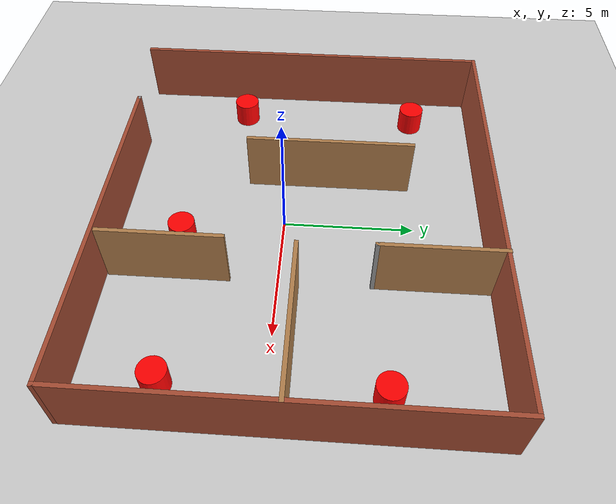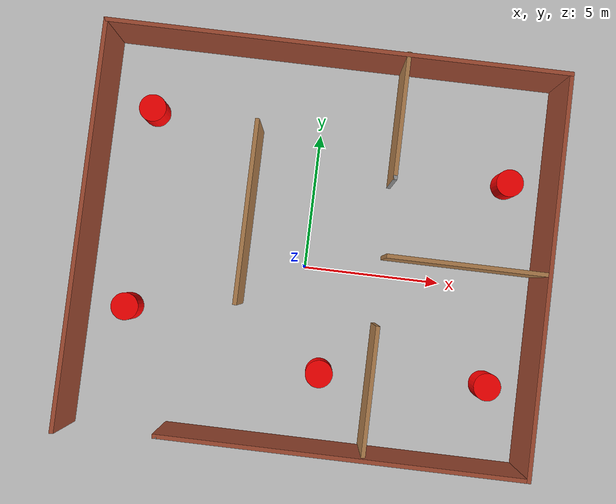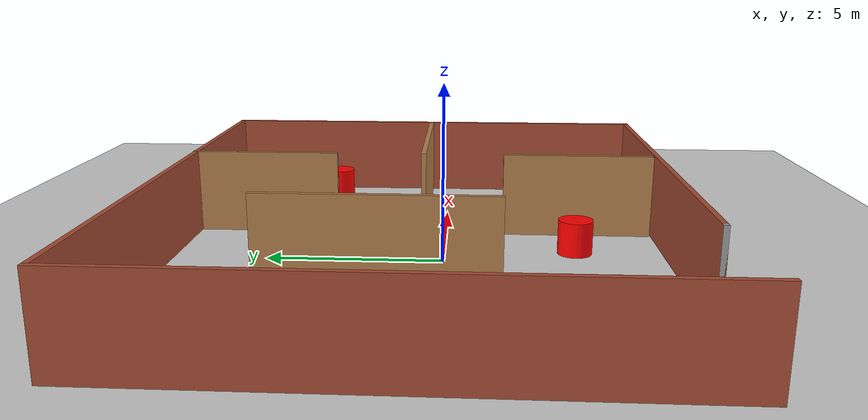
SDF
<sdf version="1.6">
 <world name="default">
  <light name="sun" type="directional">
   <pose>0 0 10 0 -0 0</pose>
   <diffuse>0.8 0.8 0.8 1</diffuse>
   <specular>0.1 0.1 0.1 1</specular>
   <attenuation>
    <range>1000</range>
    <constant>0.9</constant>
    <linear>0.01</linear>
    <quadratic>0.001</quadratic>
   </attenuation>
   <direction>-0.5 0.5 -1</direction>
  </light>
  <model name="ground_plane">
   <static>1</static>
   <link name="link">
    <collision name="collision">
     <geometry><plane><normal>0 0 1</normal><size>100 100</size></plane></geometry>
     <surface><friction><ode><mu>100</mu><mu2>50</mu2></ode></friction></surface>
    </collision>
    <visual name="visual">
     <cast_shadows>0</cast_shadows>
     <geometry><plane><normal>0 0 1</normal><size>100 100</size></plane></geometry>
     <material>
      <script><uri>file://media/materials/scripts/gazebo.material</uri><name>Gazebo/Grey</name></script>
     </material>
    </visual>
   </link>
  </model>
  <gravity>0 0 -9.8</gravity>
  <magnetic_field>6e-06 2.3e-05 -4.2e-05</magnetic_field>
  <atmosphere type="adiabatic"/>
  <physics name="default_physics" default="0" type="ode">
   <max_step_size>0.001</max_step_size>
   <real_time_factor>1</real_time_factor>
   <real_time_update_rate>1000</real_time_update_rate>
  </physics>
  <scene><ambient>0.4 0.4 0.4 1</ambient><background>0.7 0.7 0.7 1</background><shadows>1</shadows></scene>
  <spherical_coordinates>
   <surface_model>EARTH_WGS84</surface_model>
   <latitude_deg>0</latitude_deg>
   <longitude_deg>0</longitude_deg>
   <elevation>0</elevation>
   <heading_deg>0</heading_deg>
  </spherical_coordinates>
  <model name="Untitled">
   <pose>0.287205 0.576961 0 0 -0 0</pose>
   <link name="Wall_10">
    <collision name="Wall_10_Collision">
     <geometry><box><size>14.5 0.15 2.5</size></box></geometry>
     <pose>0 0 1.25 0 -0 0</pose>
    </collision>
    <visual name="Wall_10_Visual">
     <pose>0 0 1.25 0 -0 0</pose>
     <geometry><box><size>14.5 0.15 2.5</size></box></geometry>
     <material>
      <script><uri>file://media/materials/scripts/gazebo.material</uri><name>Gazebo/Bricks</name></script>
      <ambient>1 1 1 1</ambient>
     </material>
     <meta><layer>0</layer></meta>
    </visual>
    <pose>-8.175 -0.012944 0 0 -0 1.5708</pose>
   </link>
   <link name="Wall_11">
    <collision name="Wall_11_Collision">
     <geometry><box><size>16.5 0.15 2.5</size></box></geometry>
     <pose>0 0 1.25 0 -0 0</pose>
    </collision>
    <visual name="Wall_11_Visual">
     <pose>0 0 1.25 0 -0 0</pose>
     <geometry><box><size>16.5 0.15 2.5</size></box></geometry>
     <material>
      <script><uri>file://media/materials/scripts/gazebo.material</uri><name>Gazebo/Bricks</name></script>
      <ambient>1 1 1 1</ambient>
     </material>
     <meta><layer>0</layer></meta>
    </visual>
    <pose>0 7.16206 0 0 -0 0</pose>
   </link>
   <link name="Wall_12">
    <collision name="Wall_12_Collision">
     <geometry><box><size>14.25 0.15 2.5</size></box></geometry>
     <pose>0 0 1.25 0 -0 0</pose>
    </collision>
    <visual name="Wall_12_Visual">
     <pose>0 0 1.25 0 -0 0</pose>
     <geometry><box><size>14.25 0.15 2.5</size></box></geometry>
     <material>
      <script><uri>file://media/materials/scripts/gazebo.material</uri><name>Gazebo/Bricks</name></script>
      <ambient>1 1 1 1</ambient>
     </material>
     <meta><layer>0</layer></meta>
    </visual>
    <pose>8.175 0.112056 0 0 0 -1.5708</pose>
   </link>
   <link name="Wall_13">
    <collision name="Wall_13_Collision">
     <geometry><box><size>13 0.15 2.5</size></box></geometry>
     <pose>0 0 1.25 0 -0 0</pose>
    </collision>
    <visual name="Wall_13_Visual">
     <pose>0 0 1.25 0 -0 0</pose>
     <geometry><box><size>13 0.15 2.5</size></box></geometry>
     <material>
      <script><uri>file://media/materials/scripts/gazebo.material</uri><name>Gazebo/Bricks</name></script>
      <ambient>1 1 1 1</ambient>
     </material>
     <meta><layer>0</layer></meta>
    </visual>
    <pose>1.75 -6.93794 0 0 -0 3.14159</pose>
   </link>
   <link name="Wall_14">
    <collision name="Wall_14_Collision">
     <geometry><box><size>0.16 0.15 2.5</size></box></geometry>
     <pose>0 0 1.25 0 -0 0</pose>
    </collision>
    <visual name="Wall_14_Visual">
     <pose>0 0 1.25 0 -0 0</pose>
     <geometry><box><size>0.16 0.15 2.5</size></box></geometry>
     <material>
      <script><uri>file://media/materials/scripts/gazebo.material</uri><name>Gazebo/Grey</name></script>
      <ambient>1 1 1 1</ambient>
     </material>
     <meta><layer>0</layer></meta>
    </visual>
    <pose>-4.67 -6.93794 0 0 -0 0</pose>
   </link>
   <link name="Wall_16">
    <collision name="Wall_16_Collision">
     <geometry><box><size>4.5 0.15 2.5</size></box></geometry>
     <pose>0 0 1.25 0 -0 0</pose>
    </collision>
    <visual name="Wall_16_Visual">
     <pose>0 0 1.25 0 -0 0</pose>
     <geometry><box><size>4.5 0.15 2.5</size></box></geometry>
     <material>
      <script><uri>file://media/materials/scripts/gazebo.material</uri><name>Gazebo/Wood</name></script>
      <ambient>1 1 1 1</ambient>
     </material>
     <meta><layer>0</layer></meta>
    </visual>
    <pose>2.47898 5.01295 0 0 0 -1.5708</pose>
   </link>
   <link name="Wall_17">
    <collision name="Wall_17_Collision">
     <geometry><box><size>0.15 0.15 2.5</size></box></geometry>
     <pose>0 0 1.25 0 -0 0</pose>
    </collision>
    <visual name="Wall_17_Visual">
     <pose>0 0 1.25 0 -0 0</pose>
     <geometry><box><size>0.15 0.15 2.5</size></box></geometry>
     <material>
      <script><uri>file://media/materials/scripts/gazebo.material</uri><name>Gazebo/Grey</name></script>
      <ambient>1 1 1 1</ambient>
     </material>
     <meta><layer>0</layer></meta>
    </visual>
    <pose>2.47898 2.83794 0 0 -0 0</pose>
   </link>
   <link name="Wall_19">
    <collision name="Wall_19_Collision">
     <geometry><box><size>4.5 0.15 2.5</size></box></geometry>
     <pose>0 0 1.25 0 -0 0</pose>
    </collision>
    <visual name="Wall_19_Visual">
     <pose>0 0 1.25 0 -0 0</pose>
     <geometry><box><size>4.5 0.15 2.5</size></box></geometry>
     <material>
      <script><uri>file://media/materials/scripts/gazebo.material</uri><name>Gazebo/Wood</name></script>
      <ambient>1 1 1 1</ambient>
     </material>
     <meta><layer>0</layer></meta>
    </visual>
    <pose>2.47898 -4.57098 0 0 0 -1.5708</pose>
   </link>
   <link name="Wall_21">
    <collision name="Wall_21_Collision">
     <geometry><box><size>5.75 0.15 2.5</size></box></geometry>
     <pose>0 0 1.25 0 -0 0</pose>
    </collision>
    <visual name="Wall_21_Visual">
     <pose>0 0 1.25 0 -0 0</pose>
     <geometry><box><size>5.75 0.15 2.5</size></box></geometry>
     <material>
      <script><uri>file://media/materials/scripts/gazebo.material</uri><name>Gazebo/Wood</name></script>
      <ambient>1 1 1 1</ambient>
     </material>
     <meta><layer>0</layer></meta>
    </visual>
    <pose>5.37202 0.11631 0 0 -0 0</pose>
   </link>
   <link name="Wall_23">
    <collision name="Wall_23_Collision">
     <geometry><box><size>6.5 0.15 2.5</size></box></geometry>
     <pose>0 0 1.25 0 -0 0</pose>
    </collision>
    <visual name="Wall_23_Visual">
     <pose>0 0 1.25 0 -0 0</pose>
     <geometry><box><size>6.5 0.15 2.5</size></box></geometry>
     <material>
      <script><uri>file://media/materials/scripts/gazebo.material</uri><name>Gazebo/Wood</name></script>
      <ambient>1 1 1 1</ambient>
     </material>
     <meta><layer>0</layer></meta>
    </visual>
    <pose>-2.50229 1.07068 0 0 -0 1.5708</pose>
   </link>
   <static>1</static>
  </model>
  <model name="unit_cylinder">
   <link name="link">
    <inertial>
     <mass>100</mass>
     <inertia><ixx>0.145833</ixx><ixy>0</ixy><ixz>0</ixz><iyy>0.145833</iyy><iyz>0</iyz><izz>0.125</izz></inertia>
    </inertial>
    <visual name="visual">
     <geometry><cylinder><radius>0.5</radius><length>1</length></cylinder></geometry>
     <material>
      <script><name>Gazebo/Grey</name><uri>file://media/materials/scripts/gazebo.material</uri></script>
      <shader type="pixel"><normal_map>__default__</normal_map></shader>
      <ambient>1 0 0 1</ambient>
      <diffuse>1 0 0 1</diffuse>
      <specular>1 0 0 1</specular>
      <emissive>1 0 0 1</emissive>
     </material>
    </visual>
    <collision name="collision">
     <geometry><cylinder><radius>0.5</radius><length>1</length></cylinder></geometry>
     <surface>
      <friction>
       <ode><mu>1</mu><mu2>1</mu2><fdir1>0 0 0</fdir1><slip1>0</slip1><slip2>0</slip2></ode>
       <torsional>
        <coefficient>1</coefficient>
        <patch_radius>0</patch_radius>
        <surface_radius>0</surface_radius>
        <use_patch_radius>1</use_patch_radius>
        <ode><slip>0</slip></ode>
       </torsional>
      </friction>
      <bounce><restitution_coefficient>0</restitution_coefficient><threshold>1e+06</threshold></bounce>
      <contact>
       <collide_without_contact>0</collide_without_contact>
       <collide_without_contact_bitmask>1</collide_without_contact_bitmask>
       <collide_bitmask>1</collide_bitmask>
       <ode>
        <soft_cfm>0</soft_cfm>
        <soft_erp>0.2</soft_erp>
        <kp>1e+13</kp>
        <kd>1</kd>
        <max_vel>0.01</max_vel>
        <min_depth>0</min_depth>
       </ode>
       <bullet>
        <split_impulse>1</split_impulse>
        <split_impulse_penetration_threshold>-0.01</split_impulse_penetration_threshold>
        <soft_cfm>0</soft_cfm>
        <soft_erp>0.2</soft_erp>
        <kp>1e+13</kp>
        <kd>1</kd>
       </bullet>
      </contact>
     </surface>
    </collision>
   </link>
   <static>0</static>
   <pose>-6.21169 5.12722 0.499997 3e-06 4e-06 -0</pose>
  </model>
  <model name="unit_cylinder_clone">
   <link name="link">
    <inertial>
     <mass>100</mass>
     <inertia><ixx>0.145833</ixx><ixy>0</ixy><ixz>0</ixz><iyy>0.145833</iyy><iyz>0</iyz><izz>0.125</izz></inertia>
    </inertial>
    <visual name="visual">
     <geometry><cylinder><radius>0.5</radius><length>1</length></cylinder></geometry>
     <material>
      <script><name>Gazebo/Grey</name><uri>file://media/materials/scripts/gazebo.material</uri></script>
      <shader type="pixel"><normal_map>__default__</normal_map></shader>
      <ambient>1 0 0 1</ambient>
      <diffuse>1 0 0 1</diffuse>
      <specular>1 0 0 1</specular>
      <emissive>1 0 0 1</emissive>
     </material>
    </visual>
    <collision name="collision">
     <geometry><cylinder><radius>0.5</radius><length>1</length></cylinder></geometry>
     <surface>
      <friction>
       <ode><mu>1</mu><mu2>1</mu2><fdir1>0 0 0</fdir1><slip1>0</slip1><slip2>0</slip2></ode>
       <torsional>
        <coefficient>1</coefficient>
        <patch_radius>0</patch_radius>
        <surface_radius>0</surface_radius>
        <use_patch_radius>1</use_patch_radius>
        <ode><slip>0</slip></ode>
       </torsional>
      </friction>
      <bounce><restitution_coefficient>0</restitution_coefficient><threshold>1e+06</threshold></bounce>
      <contact>
       <collide_without_contact>0</collide_without_contact>
       <collide_without_contact_bitmask>1</collide_without_contact_bitmask>
       <collide_bitmask>1</collide_bitmask>
       <ode>
        <soft_cfm>0</soft_cfm>
        <soft_erp>0.2</soft_erp>
        <kp>1e+13</kp>
        <kd>1</kd>
        <max_vel>0.01</max_vel>
        <min_depth>0</min_depth>
       </ode>
       <bullet>
        <split_impulse>1</split_impulse>
        <split_impulse_penetration_threshold>-0.01</split_impulse_penetration_threshold>
        <soft_cfm>0</soft_cfm>
        <soft_erp>0.2</soft_erp>
        <kp>1e+13</kp>
        <kd>1</kd>
       </bullet>
      </contact>
     </surface>
    </collision>
   </link>
   <static>0</static>
   <pose>-6.3084 -2.18253 0.499997 3e-06 4e-06 -0</pose>
  </model>
  <model name="unit_cylinder_clone_0">
   <link name="link">
    <inertial>
     <mass>100</mass>
     <inertia><ixx>0.145833</ixx><ixy>0</ixy><ixz>0</ixz><iyy>0.145833</iyy><iyz>0</iyz><izz>0.125</izz></inertia>
    </inertial>
    <visual name="visual">
     <geometry><cylinder><radius>0.5</radius><length>1</length></cylinder></geometry>
     <material>
      <script><name>Gazebo/Grey</name><uri>file://media/materials/scripts/gazebo.material</uri></script>
      <shader type="pixel"><normal_map>__default__</normal_map></shader>
      <ambient>1 0 0 1</ambient>
      <diffuse>1 0 0 1</diffuse>
      <specular>1 0 0 1</specular>
      <emissive>1 0 0 1</emissive>
     </material>
    </visual>
    <collision name="collision">
     <geometry><cylinder><radius>0.5</radius><length>1</length></cylinder></geometry>
     <surface>
      <friction>
       <ode><mu>1</mu><mu2>1</mu2><fdir1>0 0 0</fdir1><slip1>0</slip1><slip2>0</slip2></ode>
       <torsional>
        <coefficient>1</coefficient>
        <patch_radius>0</patch_radius>
        <surface_radius>0</surface_radius>
        <use_patch_radius>1</use_patch_radius>
        <ode><slip>0</slip></ode>
       </torsional>
      </friction>
      <bounce><restitution_coefficient>0</restitution_coefficient><threshold>1e+06</threshold></bounce>
      <contact>
       <collide_without_contact>0</collide_without_contact>
       <collide_without_contact_bitmask>1</collide_without_contact_bitmask>
       <collide_bitmask>1</collide_bitmask>
       <ode>
        <soft_cfm>0</soft_cfm>
        <soft_erp>0.2</soft_erp>
        <kp>1e+13</kp>
        <kd>1</kd>
        <max_vel>0.01</max_vel>
        <min_depth>0</min_depth>
       </ode>
       <bullet>
        <split_impulse>1</split_impulse>
        <split_impulse_penetration_threshold>-0.01</split_impulse_penetration_threshold>
        <soft_cfm>0</soft_cfm>
        <soft_erp>0.2</soft_erp>
        <kp>1e+13</kp>
        <kd>1</kd>
       </bullet>
      </contact>
     </surface>
    </collision>
   </link>
   <static>0</static>
   <pose>0.968865 -3.77424 0.499997 3e-06 4e-06 -0</pose>
  </model>
  <model name="unit_cylinder_clone_1">
   <link name="link">
    <inertial>
     <mass>100</mass>
     <inertia><ixx>0.145833</ixx><ixy>0</ixy><ixz>0</ixz><iyy>0.145833</iyy><iyz>0</iyz><izz>0.125</izz></inertia>
    </inertial>
    <visual name="visual">
     <geometry><cylinder><radius>0.5</radius><length>1</length></cylinder></geometry>
     <material>
      <script><name>Gazebo/Grey</name><uri>file://media/materials/scripts/gazebo.material</uri></script>
      <shader type="pixel"><normal_map>__default__</normal_map></shader>
      <ambient>1 0 0 1</ambient>
      <diffuse>1 0 0 1</diffuse>
      <specular>1 0 0 1</specular>
      <emissive>1 0 0 1</emissive>
     </material>
    </visual>
    <collision name="collision">
     <geometry><cylinder><radius>0.5</radius><length>1</length></cylinder></geometry>
     <surface>
      <friction>
       <ode><mu>1</mu><mu2>1</mu2><fdir1>0 0 0</fdir1><slip1>0</slip1><slip2>0</slip2></ode>
       <torsional>
        <coefficient>1</coefficient>
        <patch_radius>0</patch_radius>
        <surface_radius>0</surface_radius>
        <use_patch_radius>1</use_patch_radius>
        <ode><slip>0</slip></ode>
       </torsional>
      </friction>
      <bounce><restitution_coefficient>0</restitution_coefficient><threshold>1e+06</threshold></bounce>
      <contact>
       <collide_without_contact>0</collide_without_contact>
       <collide_without_contact_bitmask>1</collide_without_contact_bitmask>
       <collide_bitmask>1</collide_bitmask>
       <ode>
        <soft_cfm>0</soft_cfm>
        <soft_erp>0.2</soft_erp>
        <kp>1e+13</kp>
        <kd>1</kd>
        <max_vel>0.01</max_vel>
        <min_depth>0</min_depth>
       </ode>
       <bullet>
        <split_impulse>1</split_impulse>
        <split_impulse_penetration_threshold>-0.01</split_impulse_penetration_threshold>
        <soft_cfm>0</soft_cfm>
        <soft_erp>0.2</soft_erp>
        <kp>1e+13</kp>
        <kd>1</kd>
       </bullet>
      </contact>
     </surface>
    </collision>
   </link>
   <static>0</static>
   <pose>7.07175 3.92365 0.499997 3e-06 4e-06 -0</pose>
  </model>
  <model name="unit_cylinder_clone_2">
   <link name="link">
    <inertial>
     <mass>100</mass>
     <inertia><ixx>0.145833</ixx><ixy>0</ixy><ixz>0</ixz><iyy>0.145833</iyy><iyz>0</iyz><izz>0.125</izz></inertia>
    </inertial>
    <visual name="visual">
     <geometry><cylinder><radius>0.5</radius><length>1</length></cylinder></geometry>
     <material>
      <script><name>Gazebo/Grey</name><uri>file://media/materials/scripts/gazebo.material</uri></script>
      <shader type="pixel"><normal_map>__default__</normal_map></shader>
      <ambient>1 0 0 1</ambient>
      <diffuse>1 0 0 1</diffuse>
      <specular>1 0 0 1</specular>
      <emissive>1 0 0 1</emissive>
     </material>
    </visual>
    <collision name="collision">
     <geometry><cylinder><radius>0.5</radius><length>1</length></cylinder></geometry>
     <surface>
      <friction>
       <ode><mu>1</mu><mu2>1</mu2><fdir1>0 0 0</fdir1><slip1>0</slip1><slip2>0</slip2></ode>
       <torsional>
        <coefficient>1</coefficient>
        <patch_radius>0</patch_radius>
        <surface_radius>0</surface_radius>
        <use_patch_radius>1</use_patch_radius>
        <ode><slip>0</slip></ode>
       </torsional>
      </friction>
      <bounce><restitution_coefficient>0</restitution_coefficient><threshold>1e+06</threshold></bounce>
      <contact>
       <collide_without_contact>0</collide_without_contact>
       <collide_without_contact_bitmask>1</collide_without_contact_bitmask>
       <collide_bitmask>1</collide_bitmask>
       <ode>
        <soft_cfm>0</soft_cfm>
        <soft_erp>0.2</soft_erp>
        <kp>1e+13</kp>
        <kd>1</kd>
        <max_vel>0.01</max_vel>
        <min_depth>0</min_depth>
       </ode>
       <bullet>
        <split_impulse>1</split_impulse>
        <split_impulse_penetration_threshold>-0.01</split_impulse_penetration_threshold>
        <soft_cfm>0</soft_cfm>
        <soft_erp>0.2</soft_erp>
        <kp>1e+13</kp>
        <kd>1</kd>
       </bullet>
      </contact>
     </surface>
    </collision>
   </link>
   <static>0</static>
   <pose>7.04876 -3.52361 0.499997 3e-06 4e-06 -0</pose>
  </model>
  <plugin filename="libcollision_map_creator.so" name="collision_map_creator"/>
 </world>
</sdf>
